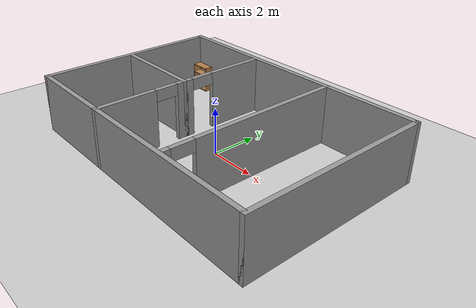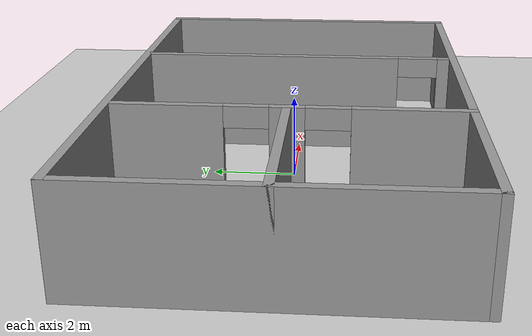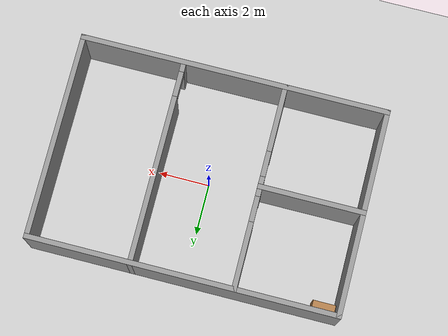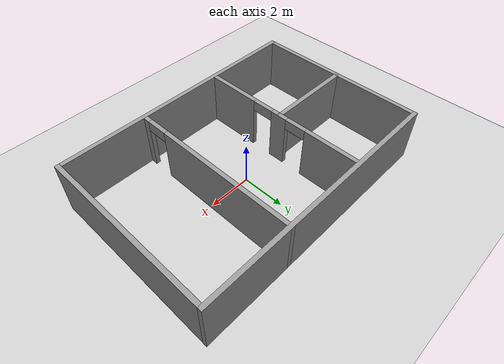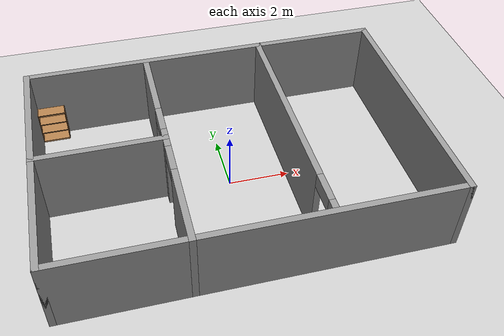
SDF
<sdf version="1.4">
 <world name="default">
  <light name="sun" type="directional">
   <pose>0 0 10 0 -0 0</pose>
   <diffuse>0.8 0.8 0.8 1</diffuse>
   <specular>0.2 0.2 0.2 1</specular>
   <attenuation>
    <range>1000</range>
    <constant>0.9</constant>
    <linear>0.01</linear>
    <quadratic>0.001</quadratic>
   </attenuation>
   <direction>-0.5 0.1 -0.9</direction>
  </light>
  <model name="ground_plane">
   <static>1</static>
   <link name="link">
    <collision name="collision">
     <geometry><plane><normal>0 0 1</normal><size>100 100</size></plane></geometry>
     <surface><friction><ode><mu>100</mu><mu2>50</mu2></ode></friction></surface>
    </collision>
    <visual name="visual">
     <cast_shadows>0</cast_shadows>
     <geometry><plane><normal>0 0 1</normal><size>100 100</size></plane></geometry>
     <material>
      <script><uri>file://media/materials/scripts/gazebo.material</uri><name>Gazebo/Grey</name></script>
     </material>
    </visual>
    <velocity_decay><linear>0</linear><angular>0</angular></velocity_decay>
   </link>
  </model>
  <physics type="ode">
   <max_step_size>0.001</max_step_size>
   <real_time_factor>1</real_time_factor>
   <real_time_update_rate>1000</real_time_update_rate>
   <gravity>0 0 -9.8</gravity>
  </physics>
  <scene><ambient>0.4 0.4 0.4 1</ambient><background>0.7 0.7 0.7 1</background><shadows>1</shadows></scene>
  <spherical_coordinates>
   <surface_model>EARTH_WGS84</surface_model>
   <latitude_deg>0</latitude_deg>
   <longitude_deg>0</longitude_deg>
   <elevation>0</elevation>
   <heading_deg>0</heading_deg>
  </spherical_coordinates>
  <model name="test">
   <link name="Wall_0">
    <collision name="Wall_0_Collision">
     <geometry><box><size>8.2 0.2 2.5</size></box></geometry>
     <pose>0 0 1.25 0 -0 0</pose>
    </collision>
    <visual name="Wall_0_Visual">
     <pose>0 0 1.25 0 -0 0</pose>
     <geometry><box><size>8.2 0.2 2.5</size></box></geometry>
     <material>
      <script>
       <uri>model://grey_wall/materials/scripts</uri>
       <uri>model://grey_wall/materials/textures</uri>
       <name>vrc/grey_wall</name>
      </script>
     </material>
    </visual>
    <velocity_decay><linear>0</linear><angular>0</angular></velocity_decay>
    <pose>-6 0 0 0 -0 1.5708</pose>
   </link>
   <link name="Wall_11">
    <pose>-2 0 0 0 0 -1.5708</pose>
    <visual name="Wall_11_Visual_0">
     <pose>-2.74381 0 1.25 0 -0 0</pose>
     <geometry><box><size>2.71238 0.2 2.5</size></box></geometry>
     <material>
      <script>
       <uri>model://grey_wall/materials/scripts</uri>
       <uri>model://grey_wall/materials/textures</uri>
       <name>vrc/grey_wall</name>
      </script>
     </material>
    </visual>
    <collision name="Wall_11_Collision_0">
     <geometry><box><size>2.71238 0.2 2.5</size></box></geometry>
     <pose>-2.74381 0 1.25 0 -0 0</pose>
    </collision>
    <visual name="Wall_11_Visual_1">
     <pose>0.005735 0 1.25 0 -0 0</pose>
     <geometry><box><size>0.786713 0.2 2.5</size></box></geometry>
     <material>
      <script>
       <uri>model://grey_wall/materials/scripts</uri>
       <uri>model://grey_wall/materials/textures</uri>
       <name>vrc/grey_wall</name>
      </script>
     </material>
    </visual>
    <collision name="Wall_11_Collision_1">
     <geometry><box><size>0.786713 0.2 2.5</size></box></geometry>
     <pose>0.005735 0 1.25 0 -0 0</pose>
    </collision>
    <visual name="Wall_11_Visual_2">
     <pose>2.74955 0 1.25 0 -0 0</pose>
     <geometry><box><size>2.70091 0.2 2.5</size></box></geometry>
     <material>
      <script>
       <uri>model://grey_wall/materials/scripts</uri>
       <uri>model://grey_wall/materials/textures</uri>
       <name>vrc/grey_wall</name>
      </script>
     </material>
    </visual>
    <collision name="Wall_11_Collision_2">
     <geometry><box><size>2.70091 0.2 2.5</size></box></geometry>
     <pose>2.74955 0 1.25 0 -0 0</pose>
    </collision>
    <visual name="Wall_11_Visual_3">
     <pose>-0.887621 0 2.25 0 -0 0</pose>
     <geometry><box><size>1 0.2 0.5</size></box></geometry>
     <material>
      <script>
       <uri>model://grey_wall/materials/scripts</uri>
       <uri>model://grey_wall/materials/textures</uri>
       <name>vrc/grey_wall</name>
      </script>
     </material>
    </visual>
    <collision name="Wall_11_Collision_3">
     <geometry><box><size>1 0.2 0.5</size></box></geometry>
     <pose>-0.887621 0 2.25 0 -0 0</pose>
    </collision>
    <visual name="Wall_11_Visual_4">
     <pose>0.899092 0 2.25 0 -0 0</pose>
     <geometry><box><size>1 0.2 0.5</size></box></geometry>
     <material>
      <script>
       <uri>model://grey_wall/materials/scripts</uri>
       <uri>model://grey_wall/materials/textures</uri>
       <name>vrc/grey_wall</name>
      </script>
     </material>
    </visual>
    <collision name="Wall_11_Collision_4">
     <geometry><box><size>1 0.2 0.5</size></box></geometry>
     <pose>0.899092 0 2.25 0 -0 0</pose>
    </collision>
    <velocity_decay><linear>0</linear><angular>0</angular></velocity_decay>
   </link>
   <link name="Wall_2">
    <collision name="Wall_2_Collision">
     <geometry><box><size>12.2 0.2 2.5</size></box></geometry>
     <pose>0 0 1.25 0 -0 0</pose>
    </collision>
    <visual name="Wall_2_Visual">
     <pose>0 0 1.25 0 -0 0</pose>
     <geometry><box><size>12.2 0.2 2.5</size></box></geometry>
     <material>
      <script>
       <uri>model://grey_wall/materials/scripts</uri>
       <uri>model://grey_wall/materials/textures</uri>
       <name>vrc/grey_wall</name>
      </script>
     </material>
    </visual>
    <velocity_decay><linear>0</linear><angular>0</angular></velocity_decay>
    <pose>0 4 0 0 -0 3.14159</pose>
   </link>
   <link name="Wall_4">
    <collision name="Wall_4_Collision">
     <geometry><box><size>12.2 0.2 2.5</size></box></geometry>
     <pose>0 0 1.25 0 -0 0</pose>
    </collision>
    <visual name="Wall_4_Visual">
     <pose>0 0 1.25 0 -0 0</pose>
     <geometry><box><size>12.2 0.2 2.5</size></box></geometry>
     <material>
      <script>
       <uri>model://grey_wall/materials/scripts</uri>
       <uri>model://grey_wall/materials/textures</uri>
       <name>vrc/grey_wall</name>
      </script>
     </material>
    </visual>
    <velocity_decay><linear>0</linear><angular>0</angular></velocity_decay>
    <pose>0 -4 0 0 -0 0</pose>
   </link>
   <link name="Wall_5">
    <collision name="Wall_5_Collision">
     <geometry><box><size>8.164 0.2 2.5</size></box></geometry>
     <pose>0 0 1.25 0 -0 0</pose>
    </collision>
    <visual name="Wall_5_Visual">
     <pose>0 0 1.25 0 -0 0</pose>
     <geometry><box><size>8.164 0.2 2.5</size></box></geometry>
     <material>
      <script>
       <uri>model://grey_wall/materials/scripts</uri>
       <uri>model://grey_wall/materials/textures</uri>
       <name>vrc/grey_wall</name>
      </script>
     </material>
    </visual>
    <velocity_decay><linear>0</linear><angular>0</angular></velocity_decay>
    <pose>6 -0.018 0 0 -0 1.5708</pose>
   </link>
   <link name="Wall_7">
    <collision name="Wall_7_Collision">
     <geometry><box><size>4.2 0.2 2.5</size></box></geometry>
     <pose>0 0 1.25 0 -0 0</pose>
    </collision>
    <visual name="Wall_7_Visual">
     <pose>0 0 1.25 0 -0 0</pose>
     <geometry><box><size>4.2 0.2 2.5</size></box></geometry>
     <material>
      <script>
       <uri>model://grey_wall/materials/scripts</uri>
       <uri>model://grey_wall/materials/textures</uri>
       <name>vrc/grey_wall</name>
      </script>
     </material>
    </visual>
    <velocity_decay><linear>0</linear><angular>0</angular></velocity_decay>
    <pose>-4 0 0 0 -0 3.14159</pose>
   </link>
   <link name="Wall_9">
    <pose>2 0.1 0 0 0 -1.5708</pose>
    <visual name="Wall_9_Visual_0">
     <pose>-0.653735 0 1.25 0 -0 0</pose>
     <geometry><box><size>6.69253 0.2 2.5</size></box></geometry>
     <material>
      <script>
       <uri>model://grey_wall/materials/scripts</uri>
       <uri>model://grey_wall/materials/textures</uri>
       <name>vrc/grey_wall</name>
      </script>
     </material>
    </visual>
    <collision name="Wall_9_Collision_0">
     <geometry><box><size>6.69253 0.2 2.5</size></box></geometry>
     <pose>-0.653735 0 1.25 0 -0 0</pose>
    </collision>
    <visual name="Wall_9_Visual_1">
     <pose>3.84626 0 1.25 0 -0 0</pose>
     <geometry><box><size>0.30747 0.2 2.5</size></box></geometry>
     <material>
      <script>
       <uri>model://grey_wall/materials/scripts</uri>
       <uri>model://grey_wall/materials/textures</uri>
       <name>vrc/grey_wall</name>
      </script>
     </material>
    </visual>
    <collision name="Wall_9_Collision_1">
     <geometry><box><size>0.30747 0.2 2.5</size></box></geometry>
     <pose>3.84626 0 1.25 0 -0 0</pose>
    </collision>
    <visual name="Wall_9_Visual_2">
     <pose>3.19253 0 2.25 0 -0 0</pose>
     <geometry><box><size>1 0.2 0.5</size></box></geometry>
     <material>
      <script>
       <uri>model://grey_wall/materials/scripts</uri>
       <uri>model://grey_wall/materials/textures</uri>
       <name>vrc/grey_wall</name>
      </script>
     </material>
    </visual>
    <collision name="Wall_9_Collision_2">
     <geometry><box><size>1 0.2 0.5</size></box></geometry>
     <pose>3.19253 0 2.25 0 -0 0</pose>
    </collision>
    <velocity_decay><linear>0</linear><angular>0</angular></velocity_decay>
   </link>
   <static>1</static>
   <pose>0.005575 0.030211 0 0 -0 0</pose>
  </model>
  <model name="bookshelf">
   <static>1</static>
   <link name="link">
    <inertial><mass>1</mass></inertial>
    <collision name="back">
     <pose>0 0.005 0.6 0 -0 0</pose>
     <geometry><box><size>0.9 0.01 1.2</size></box></geometry>
    </collision>
    <visual name="visual1">
     <pose>0 0.005 0.6 0 -0 0</pose>
     <geometry><box><size>0.9 0.01 1.2</size></box></geometry>
     <material>
      <script><uri>file://media/materials/scripts/gazebo.material</uri><name>Gazebo/Wood</name></script>
     </material>
    </visual>
    <collision name="left_side">
     <pose>0.45 -0.195 0.6 0 -0 0</pose>
     <geometry><box><size>0.02 0.4 1.2</size></box></geometry>
    </collision>
    <visual name="visual2">
     <pose>0.45 -0.195 0.6 0 -0 0</pose>
     <geometry><box><size>0.02 0.4 1.2</size></box></geometry>
     <material>
      <script><uri>file://media/materials/scripts/gazebo.material</uri><name>Gazebo/Wood</name></script>
     </material>
    </visual>
    <collision name="right_side">
     <pose>-0.45 -0.195 0.6 0 -0 0</pose>
     <geometry><box><size>0.02 0.4 1.2</size></box></geometry>
    </collision>
    <visual name="visual3">
     <pose>-0.45 -0.195 0.6 0 -0 0</pose>
     <geometry><box><size>0.02 0.4 1.2</size></box></geometry>
     <material>
      <script><uri>file://media/materials/scripts/gazebo.material</uri><name>Gazebo/Wood</name></script>
     </material>
    </visual>
    <collision name="bottom">
     <pose>0 -0.195 0.03 0 -0 0</pose>
     <geometry><box><size>0.88 0.4 0.06</size></box></geometry>
    </collision>
    <visual name="visual4">
     <pose>0 -0.195 0.03 0 -0 0</pose>
     <geometry><box><size>0.88 0.4 0.06</size></box></geometry>
     <material>
      <script><uri>file://media/materials/scripts/gazebo.material</uri><name>Gazebo/Wood</name></script>
     </material>
    </visual>
    <collision name="top">
     <pose>0 -0.195 1.19 0 -0 0</pose>
     <geometry><box><size>0.88 0.4 0.02</size></box></geometry>
    </collision>
    <visual name="visual5">
     <pose>0 -0.195 1.19 0 -0 0</pose>
     <geometry><box><size>0.88 0.4 0.02</size></box></geometry>
     <material>
      <script><uri>file://media/materials/scripts/gazebo.material</uri><name>Gazebo/Wood</name></script>
     </material>
    </visual>
    <collision name="low_shelf">
     <pose>0 -0.195 0.43 0 -0 0</pose>
     <geometry><box><size>0.88 0.4 0.02</size></box></geometry>
    </collision>
    <visual name="visual6">
     <pose>0 -0.195 0.43 0 -0 0</pose>
     <geometry><box><size>0.88 0.4 0.02</size></box></geometry>
     <material>
      <script><uri>file://media/materials/scripts/gazebo.material</uri><name>Gazebo/Wood</name></script>
     </material>
    </visual>
    <collision name="high_shelf">
     <pose>0 -0.195 0.8 0 -0 0</pose>
     <geometry><box><size>0.88 0.4 0.02</size></box></geometry>
    </collision>
    <visual name="visual7">
     <pose>0 -0.195 0.8 0 -0 0</pose>
     <geometry><box><size>0.88 0.4 0.02</size></box></geometry>
     <material>
      <script><uri>file://media/materials/scripts/gazebo.material</uri><name>Gazebo/Wood</name></script>
     </material>
    </visual>
    <velocity_decay><linear>0</linear><angular>0</angular></velocity_decay>
   </link>
   <pose>-5.43957 3.91352 0 0 -0 0</pose>
  </model>
 </world>
</sdf>
